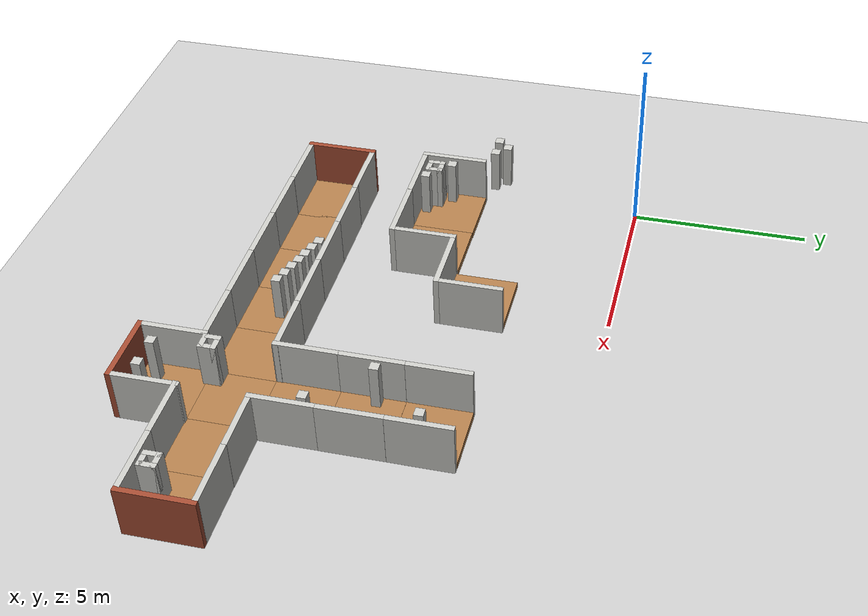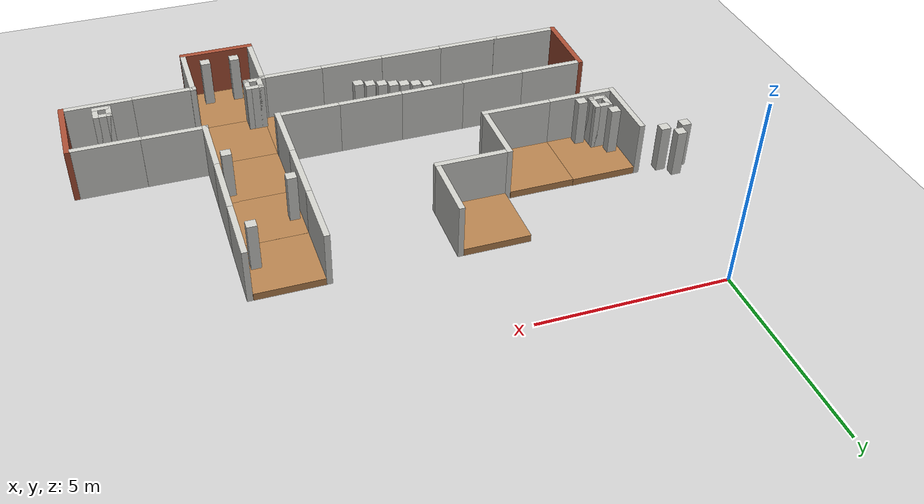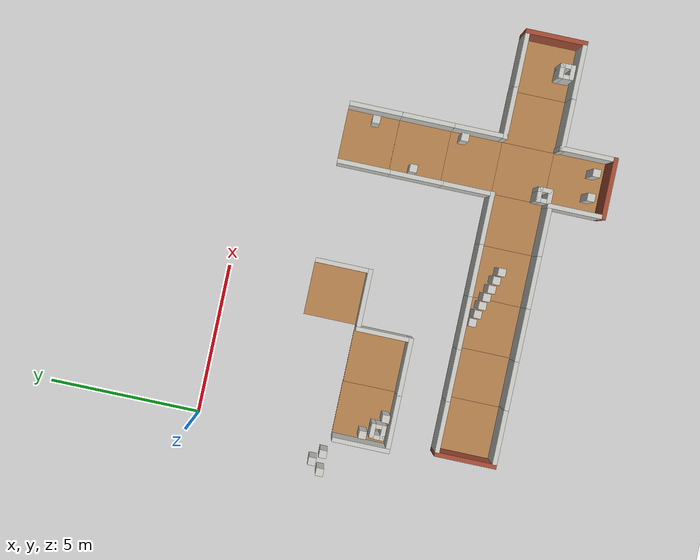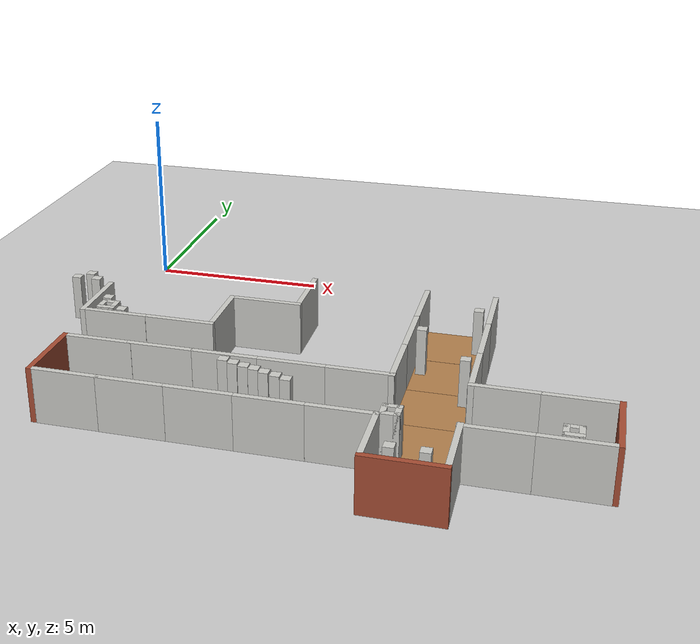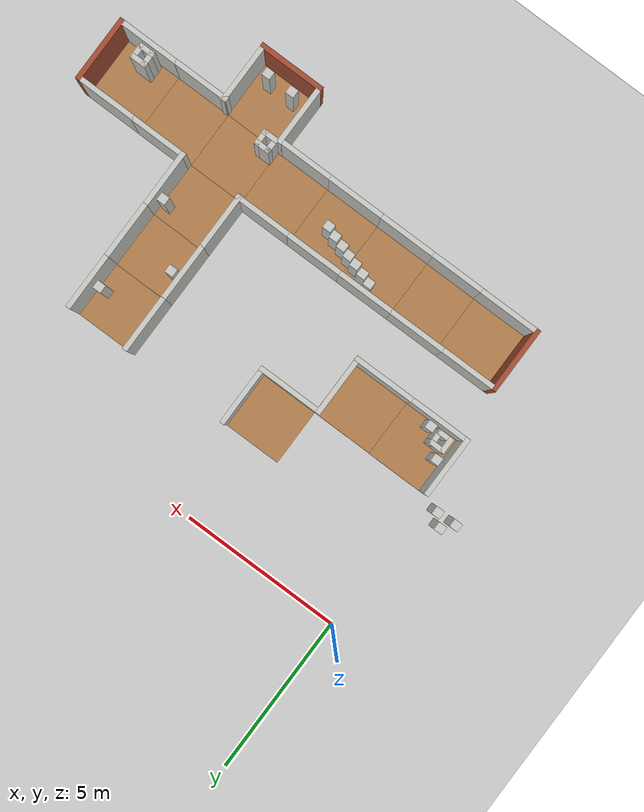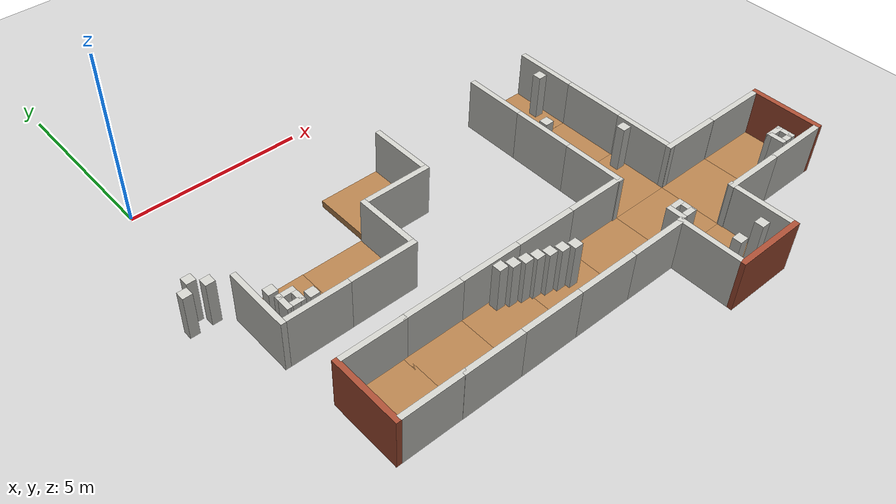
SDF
<sdf version="1.6">
 <world name="default">
  <model name="ground_plane">
   <static>1</static>
   <link name="link">
    <collision name="collision">
     <geometry><plane><normal>0 0 1</normal><size>100 100</size></plane></geometry>
     <surface><friction><ode><mu>100</mu><mu2>50</mu2></ode></friction></surface>
    </collision>
    <visual name="visual">
     <cast_shadows>0</cast_shadows>
     <geometry><plane><normal>0 0 1</normal><size>100 100</size></plane></geometry>
     <material>
      <script><uri>file://media/materials/scripts/gazebo.material</uri><name>Gazebo/Grey</name></script>
     </material>
    </visual>
   </link>
  </model>
  <model name="nerve_corner_6">
   <pose>1.09271 -5.44009 0 0 -0 1.57079</pose>
   <link name="Wall_0">
    <collision name="Wall_0_Collision">
     <geometry><box><size>1.76 1.75 0.2</size></box></geometry>
     <pose>0 0 0.1 0 -0 0</pose>
    </collision>
    <visual name="Wall_0_Visual">
     <pose>0 0 0.1 0 -0 0</pose>
     <geometry><box><size>1.76 1.75 0.2</size></box></geometry>
     <material>
      <script><uri>file://media/materials/scripts/gazebo.material</uri><name>Gazebo/Wood</name></script>
      <ambient>1 0.764706 0.305882 1</ambient>
     </material>
    </visual>
    <pose>0.077507 -0.077007 0 0 -0 3.14159</pose>
   </link>
   <link name="Wall_2">
    <collision name="Wall_2_Collision">
     <geometry><box><size>1.75 0.15 1.5</size></box></geometry>
     <pose>0 0 0.75 0 -0 0</pose>
    </collision>
    <visual name="Wall_2_Visual">
     <pose>0 0 0.75 0 -0 0</pose>
     <geometry><box><size>1.75 0.15 1.5</size></box></geometry>
     <material>
      <script><uri>file://media/materials/scripts/gazebo.material</uri><name>Gazebo/CeilingTiled</name></script>
      <ambient>1 0.764706 0.305882 1</ambient>
     </material>
    </visual>
    <pose>-0.882493 -0.073007 0 0 0 -1.5708</pose>
   </link>
   <link name="Wall_4">
    <collision name="Wall_4_Collision">
     <geometry><box><size>1.91042 0.15 1.5</size></box></geometry>
     <pose>0 0 0.75 0 -0 0</pose>
    </collision>
    <visual name="Wall_4_Visual">
     <pose>0 0 0.75 0 -0 0</pose>
     <geometry><box><size>1.91042 0.15 1.5</size></box></geometry>
     <material>
      <script><uri>file://media/materials/scripts/gazebo.material</uri><name>Gazebo/CeilingTiled</name></script>
      <ambient>1 0.764706 0.305882 1</ambient>
     </material>
    </visual>
    <pose>-0.002284 0.876825 0 0 -0 3.1414</pose>
   </link>
   <static>1</static>
  </model>
  <model name="nerve_corner_8">
   <pose>2.996 -5.44292 0 0 -0 3.14159</pose>
   <link name="Wall_0">
    <collision name="Wall_0_Collision">
     <geometry><box><size>1.76 1.75 0.2</size></box></geometry>
     <pose>0 0 0.1 0 -0 0</pose>
    </collision>
    <visual name="Wall_0_Visual">
     <pose>0 0 0.1 0 -0 0</pose>
     <geometry><box><size>1.76 1.75 0.2</size></box></geometry>
     <material>
      <script><uri>file://media/materials/scripts/gazebo.material</uri><name>Gazebo/Wood</name></script>
      <ambient>1 0.764706 0.305882 1</ambient>
     </material>
    </visual>
    <pose>0.077507 -0.077007 0 0 -0 3.14159</pose>
   </link>
   <link name="Wall_2">
    <collision name="Wall_2_Collision">
     <geometry><box><size>1.75 0.15 1.5</size></box></geometry>
     <pose>0 0 0.75 0 -0 0</pose>
    </collision>
    <visual name="Wall_2_Visual">
     <pose>0 0 0.75 0 -0 0</pose>
     <geometry><box><size>1.75 0.15 1.5</size></box></geometry>
     <material>
      <script><uri>file://media/materials/scripts/gazebo.material</uri><name>Gazebo/CeilingTiled</name></script>
      <ambient>1 0.764706 0.305882 1</ambient>
     </material>
    </visual>
    <pose>-0.882493 -0.073007 0 0 0 -1.5708</pose>
   </link>
   <link name="Wall_4">
    <collision name="Wall_4_Collision">
     <geometry><box><size>1.91042 0.15 1.5</size></box></geometry>
     <pose>0 0 0.75 0 -0 0</pose>
    </collision>
    <visual name="Wall_4_Visual">
     <pose>0 0 0.75 0 -0 0</pose>
     <geometry><box><size>1.91042 0.15 1.5</size></box></geometry>
     <material>
      <script><uri>file://media/materials/scripts/gazebo.material</uri><name>Gazebo/CeilingTiled</name></script>
      <ambient>1 0.764706 0.305882 1</ambient>
     </material>
    </visual>
    <pose>-0.002284 0.876825 0 0 -0 3.1414</pose>
   </link>
   <static>1</static>
  </model>
  <model name="nerve_corner_8_clone">
   <pose>4.90397 -3.68999 0 0 0 -3.14159</pose>
   <link name="Wall_0">
    <collision name="Wall_0_Collision">
     <geometry><box><size>1.76 1.75 0.2</size></box></geometry>
     <pose>0 0 0.1 0 -0 0</pose>
    </collision>
    <visual name="Wall_0_Visual">
     <pose>0 0 0.1 0 -0 0</pose>
     <geometry><box><size>1.76 1.75 0.2</size></box></geometry>
     <material>
      <script><uri>file://media/materials/scripts/gazebo.material</uri><name>Gazebo/Wood</name></script>
      <ambient>1 0.764706 0.305882 1</ambient>
     </material>
    </visual>
    <pose>0.077507 -0.077007 0 0 -0 3.14159</pose>
   </link>
   <link name="Wall_2">
    <collision name="Wall_2_Collision">
     <geometry><box><size>1.75 0.15 1.5</size></box></geometry>
     <pose>0 0 0.75 0 -0 0</pose>
    </collision>
    <visual name="Wall_2_Visual">
     <pose>0 0 0.75 0 -0 0</pose>
     <geometry><box><size>1.75 0.15 1.5</size></box></geometry>
     <material>
      <script><uri>file://media/materials/scripts/gazebo.material</uri><name>Gazebo/CeilingTiled</name></script>
      <ambient>1 0.764706 0.305882 1</ambient>
     </material>
    </visual>
    <pose>-0.882493 -0.073007 0 0 0 -1.5708</pose>
   </link>
   <link name="Wall_4">
    <collision name="Wall_4_Collision">
     <geometry><box><size>1.91042 0.15 1.5</size></box></geometry>
     <pose>0 0 0.75 0 -0 0</pose>
    </collision>
    <visual name="Wall_4_Visual">
     <pose>0 0 0.75 0 -0 0</pose>
     <geometry><box><size>1.91042 0.15 1.5</size></box></geometry>
     <material>
      <script><uri>file://media/materials/scripts/gazebo.material</uri><name>Gazebo/CeilingTiled</name></script>
      <ambient>1 0.764706 0.305882 1</ambient>
     </material>
    </visual>
    <pose>-0.002284 0.876825 0 0 -0 3.1414</pose>
   </link>
   <static>1</static>
  </model>
  <model name="nerve_end_2">
   <pose>1.33899 -8.851 0 0 -0 1.5708</pose>
   <link name="Wall_0">
    <collision name="Wall_0_Collision">
     <geometry><box><size>1.76 1.75 0.2</size></box></geometry>
     <pose>0 0 0.1 0 -0 0</pose>
    </collision>
    <visual name="Wall_0_Visual">
     <pose>0 0 0.1 0 -0 0</pose>
     <geometry><box><size>1.76 1.75 0.2</size></box></geometry>
     <material>
      <script><uri>file://media/materials/scripts/gazebo.material</uri><name>Gazebo/Wood</name></script>
      <ambient>1 0.764706 0.305882 1</ambient>
     </material>
    </visual>
    <pose>-0.009 -0.064 0 0 -0 0</pose>
   </link>
   <link name="Wall_2">
    <collision name="Wall_2_Collision">
     <geometry><box><size>1.8 0.15 1.5</size></box></geometry>
     <pose>0 0 0.75 0 -0 0</pose>
    </collision>
    <visual name="Wall_2_Visual">
     <pose>0 0 0.75 0 -0 0</pose>
     <geometry><box><size>1.8 0.15 1.5</size></box></geometry>
     <material>
      <script><uri>file://media/materials/scripts/gazebo.material</uri><name>Gazebo/CeilingTiled</name></script>
      <ambient>1 0.764706 0.305882 1</ambient>
     </material>
    </visual>
    <pose>-0.95 -0.065 0 0 0 -1.5708</pose>
   </link>
   <link name="Wall_4">
    <collision name="Wall_4_Collision">
     <geometry><box><size>1.8 0.15 1.5</size></box></geometry>
     <pose>0 0 0.75 0 -0 0</pose>
    </collision>
    <visual name="Wall_4_Visual">
     <pose>0 0 0.75 0 -0 0</pose>
     <geometry><box><size>1.8 0.15 1.5</size></box></geometry>
     <material>
      <script><uri>file://media/materials/scripts/gazebo.material</uri><name>Gazebo/CeilingTiled</name></script>
      <ambient>1 0.764706 0.305882 1</ambient>
     </material>
    </visual>
    <pose>0.95 -0.065 0 0 0 -1.5708</pose>
   </link>
   <link name="Wall_6">
    <collision name="Wall_6_Collision">
     <geometry><box><size>2.05 0.15 1.5</size></box></geometry>
     <pose>0 0 0.75 0 -0 0</pose>
    </collision>
    <visual name="Wall_6_Visual">
     <pose>0 0 0.75 0 -0 0</pose>
     <geometry><box><size>2.05 0.15 1.5</size></box></geometry>
     <material>
      <script><uri>file://media/materials/scripts/gazebo.material</uri><name>Gazebo/Bricks</name></script>
      <ambient>0.996078 0.47451 0.0196078 1</ambient>
     </material>
    </visual>
    <pose>0 0.89 0 0 -0 0</pose>
   </link>
   <static>1</static>
  </model>
  <model name="nerve_end_2_clone">
   <pose>13.571 -8.8694 0 0 0 -1.5708</pose>
   <link name="Wall_0">
    <collision name="Wall_0_Collision">
     <geometry><box><size>1.76 1.75 0.2</size></box></geometry>
     <pose>0 0 0.1 0 -0 0</pose>
    </collision>
    <visual name="Wall_0_Visual">
     <pose>0 0 0.1 0 -0 0</pose>
     <geometry><box><size>1.76 1.75 0.2</size></box></geometry>
     <material>
      <script><uri>file://media/materials/scripts/gazebo.material</uri><name>Gazebo/Wood</name></script>
      <ambient>1 0.764706 0.305882 1</ambient>
     </material>
    </visual>
    <pose>-0.009 -0.064 0 0 -0 0</pose>
   </link>
   <link name="Wall_2">
    <collision name="Wall_2_Collision">
     <geometry><box><size>1.8 0.15 1.5</size></box></geometry>
     <pose>0 0 0.75 0 -0 0</pose>
    </collision>
    <visual name="Wall_2_Visual">
     <pose>0 0 0.75 0 -0 0</pose>
     <geometry><box><size>1.8 0.15 1.5</size></box></geometry>
     <material>
      <script><uri>file://media/materials/scripts/gazebo.material</uri><name>Gazebo/CeilingTiled</name></script>
      <ambient>1 0.764706 0.305882 1</ambient>
     </material>
    </visual>
    <pose>-0.95 -0.065 0 0 0 -1.5708</pose>
   </link>
   <link name="Wall_4">
    <collision name="Wall_4_Collision">
     <geometry><box><size>1.8 0.15 1.5</size></box></geometry>
     <pose>0 0 0.75 0 -0 0</pose>
    </collision>
    <visual name="Wall_4_Visual">
     <pose>0 0 0.75 0 -0 0</pose>
     <geometry><box><size>1.8 0.15 1.5</size></box></geometry>
     <material>
      <script><uri>file://media/materials/scripts/gazebo.material</uri><name>Gazebo/CeilingTiled</name></script>
      <ambient>1 0.764706 0.305882 1</ambient>
     </material>
    </visual>
    <pose>0.95 -0.065 0 0 0 -1.5708</pose>
   </link>
   <link name="Wall_6">
    <collision name="Wall_6_Collision">
     <geometry><box><size>2.05 0.15 1.5</size></box></geometry>
     <pose>0 0 0.75 0 -0 0</pose>
    </collision>
    <visual name="Wall_6_Visual">
     <pose>0 0 0.75 0 -0 0</pose>
     <geometry><box><size>2.05 0.15 1.5</size></box></geometry>
     <material>
      <script><uri>file://media/materials/scripts/gazebo.material</uri><name>Gazebo/Bricks</name></script>
      <ambient>0.996078 0.47451 0.0196078 1</ambient>
     </material>
    </visual>
    <pose>0 0.89 0 0 -0 0</pose>
   </link>
   <static>1</static>
  </model>
  <model name="nerve_end_2_clone_0">
   <pose>10.0305 -10.6839 0 0 0 -3.14159</pose>
   <link name="Wall_0">
    <collision name="Wall_0_Collision">
     <geometry><box><size>1.76 1.75 0.2</size></box></geometry>
     <pose>0 0 0.1 0 -0 0</pose>
    </collision>
    <visual name="Wall_0_Visual">
     <pose>0 0 0.1 0 -0 0</pose>
     <geometry><box><size>1.76 1.75 0.2</size></box></geometry>
     <material>
      <script><uri>file://media/materials/scripts/gazebo.material</uri><name>Gazebo/Wood</name></script>
      <ambient>1 0.764706 0.305882 1</ambient>
     </material>
    </visual>
    <pose>-0.009 -0.064 0 0 -0 0</pose>
   </link>
   <link name="Wall_2">
    <collision name="Wall_2_Collision">
     <geometry><box><size>1.8 0.15 1.5</size></box></geometry>
     <pose>0 0 0.75 0 -0 0</pose>
    </collision>
    <visual name="Wall_2_Visual">
     <pose>0 0 0.75 0 -0 0</pose>
     <geometry><box><size>1.8 0.15 1.5</size></box></geometry>
     <material>
      <script><uri>file://media/materials/scripts/gazebo.material</uri><name>Gazebo/CeilingTiled</name></script>
      <ambient>1 0.764706 0.305882 1</ambient>
     </material>
    </visual>
    <pose>-0.95 -0.065 0 0 0 -1.5708</pose>
   </link>
   <link name="Wall_4">
    <collision name="Wall_4_Collision">
     <geometry><box><size>1.8 0.15 1.5</size></box></geometry>
     <pose>0 0 0.75 0 -0 0</pose>
    </collision>
    <visual name="Wall_4_Visual">
     <pose>0 0 0.75 0 -0 0</pose>
     <geometry><box><size>1.8 0.15 1.5</size></box></geometry>
     <material>
      <script><uri>file://media/materials/scripts/gazebo.material</uri><name>Gazebo/CeilingTiled</name></script>
      <ambient>1 0.764706 0.305882 1</ambient>
     </material>
    </visual>
    <pose>0.95 -0.065 0 0 0 -1.5708</pose>
   </link>
   <link name="Wall_6">
    <collision name="Wall_6_Collision">
     <geometry><box><size>2.05 0.15 1.5</size></box></geometry>
     <pose>0 0 0.75 0 -0 0</pose>
    </collision>
    <visual name="Wall_6_Visual">
     <pose>0 0 0.75 0 -0 0</pose>
     <geometry><box><size>2.05 0.15 1.5</size></box></geometry>
     <material>
      <script><uri>file://media/materials/scripts/gazebo.material</uri><name>Gazebo/Bricks</name></script>
      <ambient>0.996078 0.47451 0.0196078 1</ambient>
     </material>
    </visual>
    <pose>0 0.89 0 0 -0 0</pose>
   </link>
   <static>1</static>
  </model>
  <model name="nerve_straight_12_clone_1_clone_clone_1">
   <pose>10.0198 -3.63279 0 0 -0 3.14159</pose>
   <link name="Wall_0">
    <collision name="Wall_0_Collision">
     <geometry><box><size>1.76 1.75 0.2</size></box></geometry>
     <pose>0 0 0.1 0 -0 0</pose>
    </collision>
    <visual name="Wall_0_Visual">
     <pose>0 0 0.1 0 -0 0</pose>
     <geometry><box><size>1.76 1.75 0.2</size></box></geometry>
     <material>
      <script><uri>file://media/materials/scripts/gazebo.material</uri><name>Gazebo/Wood</name></script>
      <ambient>1 0.764706 0.305882 1</ambient>
     </material>
    </visual>
    <pose>0.005 -0.002 0 0 -0 3.14159</pose>
   </link>
   <link name="Wall_2">
    <collision name="Wall_2_Collision">
     <geometry><box><size>1.75 0.15 1.5</size></box></geometry>
     <pose>0 0 0.75 0 -0 0</pose>
    </collision>
    <visual name="Wall_2_Visual">
     <pose>0 0 0.75 0 -0 0</pose>
     <geometry><box><size>1.75 0.15 1.5</size></box></geometry>
     <material>
      <script><uri>file://media/materials/scripts/gazebo.material</uri><name>Gazebo/CeilingTiled</name></script>
      <ambient>1 0.764706 0.305882 1</ambient>
     </material>
    </visual>
    <pose>-0.955 0.002 0 0 0 -1.5708</pose>
   </link>
   <link name="Wall_4">
    <collision name="Wall_4_Collision">
     <geometry><box><size>1.75 0.15 1.5</size></box></geometry>
     <pose>0 0 0.75 0 -0 0</pose>
    </collision>
    <visual name="Wall_4_Visual">
     <pose>0 0 0.75 0 -0 0</pose>
     <geometry><box><size>1.75 0.15 1.5</size></box></geometry>
     <material>
      <script><uri>file://media/materials/scripts/gazebo.material</uri><name>Gazebo/CeilingTiled</name></script>
      <ambient>1 0.764706 0.305882 1</ambient>
     </material>
    </visual>
    <pose>0.955 0.002 0 0 0 -1.5708</pose>
   </link>
   <static>1</static>
  </model>
  <model name="nerve_straight_12_clone_1_clone_clone_2">
   <pose>10.0191 -5.38374 0 0 -0 3.14159</pose>
   <link name="Wall_0">
    <collision name="Wall_0_Collision">
     <geometry><box><size>1.76 1.75 0.2</size></box></geometry>
     <pose>0 0 0.1 0 -0 0</pose>
    </collision>
    <visual name="Wall_0_Visual">
     <pose>0 0 0.1 0 -0 0</pose>
     <geometry><box><size>1.76 1.75 0.2</size></box></geometry>
     <material>
      <script><uri>file://media/materials/scripts/gazebo.material</uri><name>Gazebo/Wood</name></script>
      <ambient>1 0.764706 0.305882 1</ambient>
     </material>
    </visual>
    <pose>0.005 -0.002 0 0 -0 3.14159</pose>
   </link>
   <link name="Wall_2">
    <collision name="Wall_2_Collision">
     <geometry><box><size>1.75 0.15 1.5</size></box></geometry>
     <pose>0 0 0.75 0 -0 0</pose>
    </collision>
    <visual name="Wall_2_Visual">
     <pose>0 0 0.75 0 -0 0</pose>
     <geometry><box><size>1.75 0.15 1.5</size></box></geometry>
     <material>
      <script><uri>file://media/materials/scripts/gazebo.material</uri><name>Gazebo/CeilingTiled</name></script>
      <ambient>1 0.764706 0.305882 1</ambient>
     </material>
    </visual>
    <pose>-0.955 0.002 0 0 0 -1.5708</pose>
   </link>
   <link name="Wall_4">
    <collision name="Wall_4_Collision">
     <geometry><box><size>1.75 0.15 1.5</size></box></geometry>
     <pose>0 0 0.75 0 -0 0</pose>
    </collision>
    <visual name="Wall_4_Visual">
     <pose>0 0 0.75 0 -0 0</pose>
     <geometry><box><size>1.75 0.15 1.5</size></box></geometry>
     <material>
      <script><uri>file://media/materials/scripts/gazebo.material</uri><name>Gazebo/CeilingTiled</name></script>
      <ambient>1 0.764706 0.305882 1</ambient>
     </material>
    </visual>
    <pose>0.955 0.002 0 0 0 -1.5708</pose>
   </link>
   <static>1</static>
  </model>
  <model name="nerve_straight_12_clone_1_clone_clone_3">
   <pose>8.27264 -8.85141 0 0 -0 1.57079</pose>
   <link name="Wall_0">
    <collision name="Wall_0_Collision">
     <geometry><box><size>1.76 1.75 0.2</size></box></geometry>
     <pose>0 0 0.1 0 -0 0</pose>
    </collision>
    <visual name="Wall_0_Visual">
     <pose>0 0 0.1 0 -0 0</pose>
     <geometry><box><size>1.76 1.75 0.2</size></box></geometry>
     <material>
      <script><uri>file://media/materials/scripts/gazebo.material</uri><name>Gazebo/Wood</name></script>
      <ambient>1 0.764706 0.305882 1</ambient>
     </material>
    </visual>
    <pose>0.005 -0.002 0 0 -0 3.14159</pose>
   </link>
   <link name="Wall_2">
    <collision name="Wall_2_Collision">
     <geometry><box><size>1.75 0.15 1.5</size></box></geometry>
     <pose>0 0 0.75 0 -0 0</pose>
    </collision>
    <visual name="Wall_2_Visual">
     <pose>0 0 0.75 0 -0 0</pose>
     <geometry><box><size>1.75 0.15 1.5</size></box></geometry>
     <material>
      <script><uri>file://media/materials/scripts/gazebo.material</uri><name>Gazebo/CeilingTiled</name></script>
      <ambient>1 0.764706 0.305882 1</ambient>
     </material>
    </visual>
    <pose>-0.955 0.002 0 0 0 -1.5708</pose>
   </link>
   <link name="Wall_4">
    <collision name="Wall_4_Collision">
     <geometry><box><size>1.75 0.15 1.5</size></box></geometry>
     <pose>0 0 0.75 0 -0 0</pose>
    </collision>
    <visual name="Wall_4_Visual">
     <pose>0 0 0.75 0 -0 0</pose>
     <geometry><box><size>1.75 0.15 1.5</size></box></geometry>
     <material>
      <script><uri>file://media/materials/scripts/gazebo.material</uri><name>Gazebo/CeilingTiled</name></script>
      <ambient>1 0.764706 0.305882 1</ambient>
     </material>
    </visual>
    <pose>0.955 0.002 0 0 0 -1.5708</pose>
   </link>
   <static>1</static>
  </model>
  <model name="nerve_platform_1">
   <pose>10.0224 -8.86715 0 0 -0 0</pose>
   <link name="Wall_6">
    <collision name="Wall_6_Collision">
     <geometry><box><size>1.76 1.75 0.2</size></box></geometry>
     <pose>0 0 0.1 0 -0 0</pose>
    </collision>
    <visual name="Wall_6_Visual">
     <pose>0 0 0.1 0 -0 0</pose>
     <geometry><box><size>1.76 1.75 0.2</size></box></geometry>
     <material>
      <script><uri>file://media/materials/scripts/gazebo.material</uri><name>Gazebo/Wood</name></script>
      <ambient>1 0.764706 0.305882 1</ambient>
     </material>
    </visual>
    <pose>0 0 0 0 -0 1.5708</pose>
   </link>
   <static>1</static>
  </model>
  <model name="nerve_straight_12_clone_1_clone_clone_3_clone">
   <pose>11.7655 -8.86888 0 0 -0 1.57079</pose>
   <link name="Wall_0">
    <collision name="Wall_0_Collision">
     <geometry><box><size>1.76 1.75 0.2</size></box></geometry>
     <pose>0 0 0.1 0 -0 0</pose>
    </collision>
    <visual name="Wall_0_Visual">
     <pose>0 0 0.1 0 -0 0</pose>
     <geometry><box><size>1.76 1.75 0.2</size></box></geometry>
     <material>
      <script><uri>file://media/materials/scripts/gazebo.material</uri><name>Gazebo/Wood</name></script>
      <ambient>1 0.764706 0.305882 1</ambient>
     </material>
    </visual>
    <pose>0.005 -0.002 0 0 -0 3.14159</pose>
   </link>
   <link name="Wall_2">
    <collision name="Wall_2_Collision">
     <geometry><box><size>1.75 0.15 1.5</size></box></geometry>
     <pose>0 0 0.75 0 -0 0</pose>
    </collision>
    <visual name="Wall_2_Visual">
     <pose>0 0 0.75 0 -0 0</pose>
     <geometry><box><size>1.75 0.15 1.5</size></box></geometry>
     <material>
      <script><uri>file://media/materials/scripts/gazebo.material</uri><name>Gazebo/CeilingTiled</name></script>
      <ambient>1 0.764706 0.305882 1</ambient>
     </material>
    </visual>
    <pose>-0.955 0.002 0 0 0 -1.5708</pose>
   </link>
   <link name="Wall_4">
    <collision name="Wall_4_Collision">
     <geometry><box><size>1.75 0.15 1.5</size></box></geometry>
     <pose>0 0 0.75 0 -0 0</pose>
    </collision>
    <visual name="Wall_4_Visual">
     <pose>0 0 0.75 0 -0 0</pose>
     <geometry><box><size>1.75 0.15 1.5</size></box></geometry>
     <material>
      <script><uri>file://media/materials/scripts/gazebo.material</uri><name>Gazebo/CeilingTiled</name></script>
      <ambient>1 0.764706 0.305882 1</ambient>
     </material>
    </visual>
    <pose>0.955 0.002 0 0 0 -1.5708</pose>
   </link>
   <static>1</static>
  </model>
  <model name="nerve_straight_12_clone_1_clone_clone_3_clone_0">
   <pose>10.0172 -7.11671 0 0 -0 3.14159</pose>
   <link name="Wall_0">
    <collision name="Wall_0_Collision">
     <geometry><box><size>1.76 1.75 0.2</size></box></geometry>
     <pose>0 0 0.1 0 -0 0</pose>
    </collision>
    <visual name="Wall_0_Visual">
     <pose>0 0 0.1 0 -0 0</pose>
     <geometry><box><size>1.76 1.75 0.2</size></box></geometry>
     <material>
      <script><uri>file://media/materials/scripts/gazebo.material</uri><name>Gazebo/Wood</name></script>
      <ambient>1 0.764706 0.305882 1</ambient>
     </material>
    </visual>
    <pose>0.005 -0.002 0 0 -0 3.14159</pose>
   </link>
   <link name="Wall_2">
    <collision name="Wall_2_Collision">
     <geometry><box><size>1.75 0.15 1.5</size></box></geometry>
     <pose>0 0 0.75 0 -0 0</pose>
    </collision>
    <visual name="Wall_2_Visual">
     <pose>0 0 0.75 0 -0 0</pose>
     <geometry><box><size>1.75 0.15 1.5</size></box></geometry>
     <material>
      <script><uri>file://media/materials/scripts/gazebo.material</uri><name>Gazebo/CeilingTiled</name></script>
      <ambient>1 0.764706 0.305882 1</ambient>
     </material>
    </visual>
    <pose>-0.955 0.002 0 0 0 -1.5708</pose>
   </link>
   <link name="Wall_4">
    <collision name="Wall_4_Collision">
     <geometry><box><size>1.75 0.15 1.5</size></box></geometry>
     <pose>0 0 0.75 0 -0 0</pose>
    </collision>
    <visual name="Wall_4_Visual">
     <pose>0 0 0.75 0 -0 0</pose>
     <geometry><box><size>1.75 0.15 1.5</size></box></geometry>
     <material>
      <script><uri>file://media/materials/scripts/gazebo.material</uri><name>Gazebo/CeilingTiled</name></script>
      <ambient>1 0.764706 0.305882 1</ambient>
     </material>
    </visual>
    <pose>0.955 0.002 0 0 0 -1.5708</pose>
   </link>
   <static>1</static>
  </model>
  <model name="nerve_straight_12_clone_1_clone_clone_3_clone_1">
   <pose>6.53662 -8.85185 0 0 -0 1.57079</pose>
   <link name="Wall_0">
    <collision name="Wall_0_Collision">
     <geometry><box><size>1.76 1.75 0.2</size></box></geometry>
     <pose>0 0 0.1 0 -0 0</pose>
    </collision>
    <visual name="Wall_0_Visual">
     <pose>0 0 0.1 0 -0 0</pose>
     <geometry><box><size>1.76 1.75 0.2</size></box></geometry>
     <material>
      <script><uri>file://media/materials/scripts/gazebo.material</uri><name>Gazebo/Wood</name></script>
      <ambient>1 0.764706 0.305882 1</ambient>
     </material>
    </visual>
    <pose>0.005 -0.002 0 0 -0 3.14159</pose>
   </link>
   <link name="Wall_2">
    <collision name="Wall_2_Collision">
     <geometry><box><size>1.75 0.15 1.5</size></box></geometry>
     <pose>0 0 0.75 0 -0 0</pose>
    </collision>
    <visual name="Wall_2_Visual">
     <pose>0 0 0.75 0 -0 0</pose>
     <geometry><box><size>1.75 0.15 1.5</size></box></geometry>
     <material>
      <script><uri>file://media/materials/scripts/gazebo.material</uri><name>Gazebo/CeilingTiled</name></script>
      <ambient>1 0.764706 0.305882 1</ambient>
     </material>
    </visual>
    <pose>-0.955 0.002 0 0 0 -1.5708</pose>
   </link>
   <link name="Wall_4">
    <collision name="Wall_4_Collision">
     <geometry><box><size>1.75 0.15 1.5</size></box></geometry>
     <pose>0 0 0.75 0 -0 0</pose>
    </collision>
    <visual name="Wall_4_Visual">
     <pose>0 0 0.75 0 -0 0</pose>
     <geometry><box><size>1.75 0.15 1.5</size></box></geometry>
     <material>
      <script><uri>file://media/materials/scripts/gazebo.material</uri><name>Gazebo/CeilingTiled</name></script>
      <ambient>1 0.764706 0.305882 1</ambient>
     </material>
    </visual>
    <pose>0.955 0.002 0 0 0 -1.5708</pose>
   </link>
   <static>1</static>
  </model>
  <model name="nerve_straight_12_clone_1_clone_clone_3_clone_2">
   <pose>4.79429 -8.8502 0 0 -0 1.57079</pose>
   <link name="Wall_0">
    <collision name="Wall_0_Collision">
     <geometry><box><size>1.76 1.75 0.2</size></box></geometry>
     <pose>0 0 0.1 0 -0 0</pose>
    </collision>
    <visual name="Wall_0_Visual">
     <pose>0 0 0.1 0 -0 0</pose>
     <geometry><box><size>1.76 1.75 0.2</size></box></geometry>
     <material>
      <script><uri>file://media/materials/scripts/gazebo.material</uri><name>Gazebo/Wood</name></script>
      <ambient>1 0.764706 0.305882 1</ambient>
     </material>
    </visual>
    <pose>0.005 -0.002 0 0 -0 3.14159</pose>
   </link>
   <link name="Wall_2">
    <collision name="Wall_2_Collision">
     <geometry><box><size>1.75 0.15 1.5</size></box></geometry>
     <pose>0 0 0.75 0 -0 0</pose>
    </collision>
    <visual name="Wall_2_Visual">
     <pose>0 0 0.75 0 -0 0</pose>
     <geometry><box><size>1.75 0.15 1.5</size></box></geometry>
     <material>
      <script><uri>file://media/materials/scripts/gazebo.material</uri><name>Gazebo/CeilingTiled</name></script>
      <ambient>1 0.764706 0.305882 1</ambient>
     </material>
    </visual>
    <pose>-0.955 0.002 0 0 0 -1.5708</pose>
   </link>
   <link name="Wall_4">
    <collision name="Wall_4_Collision">
     <geometry><box><size>1.75 0.15 1.5</size></box></geometry>
     <pose>0 0 0.75 0 -0 0</pose>
    </collision>
    <visual name="Wall_4_Visual">
     <pose>0 0 0.75 0 -0 0</pose>
     <geometry><box><size>1.75 0.15 1.5</size></box></geometry>
     <material>
      <script><uri>file://media/materials/scripts/gazebo.material</uri><name>Gazebo/CeilingTiled</name></script>
      <ambient>1 0.764706 0.305882 1</ambient>
     </material>
    </visual>
    <pose>0.955 0.002 0 0 0 -1.5708</pose>
   </link>
   <static>1</static>
  </model>
  <model name="nerve_straight_12_clone_1_clone_clone_3_clone_2_clone">
   <pose>3.06851 -8.85063 0 0 -0 1.57079</pose>
   <link name="Wall_0">
    <collision name="Wall_0_Collision">
     <geometry><box><size>1.76 1.75 0.2</size></box></geometry>
     <pose>0 0 0.1 0 -0 0</pose>
    </collision>
    <visual name="Wall_0_Visual">
     <pose>0 0 0.1 0 -0 0</pose>
     <geometry><box><size>1.76 1.75 0.2</size></box></geometry>
     <material>
      <script><uri>file://media/materials/scripts/gazebo.material</uri><name>Gazebo/Wood</name></script>
      <ambient>1 0.764706 0.305882 1</ambient>
     </material>
    </visual>
    <pose>0.005 -0.002 0 0 -0 3.14159</pose>
   </link>
   <link name="Wall_2">
    <collision name="Wall_2_Collision">
     <geometry><box><size>1.75 0.15 1.5</size></box></geometry>
     <pose>0 0 0.75 0 -0 0</pose>
    </collision>
    <visual name="Wall_2_Visual">
     <pose>0 0 0.75 0 -0 0</pose>
     <geometry><box><size>1.75 0.15 1.5</size></box></geometry>
     <material>
      <script><uri>file://media/materials/scripts/gazebo.material</uri><name>Gazebo/CeilingTiled</name></script>
      <ambient>1 0.764706 0.305882 1</ambient>
     </material>
    </visual>
    <pose>-0.955 0.002 0 0 0 -1.5708</pose>
   </link>
   <link name="Wall_4">
    <collision name="Wall_4_Collision">
     <geometry><box><size>1.75 0.15 1.5</size></box></geometry>
     <pose>0 0 0.75 0 -0 0</pose>
    </collision>
    <visual name="Wall_4_Visual">
     <pose>0 0 0.75 0 -0 0</pose>
     <geometry><box><size>1.75 0.15 1.5</size></box></geometry>
     <material>
      <script><uri>file://media/materials/scripts/gazebo.material</uri><name>Gazebo/CeilingTiled</name></script>
      <ambient>1 0.764706 0.305882 1</ambient>
     </material>
    </visual>
    <pose>0.955 0.002 0 0 0 -1.5708</pose>
   </link>
   <static>1</static>
  </model>
  <model name="nerve_obs_squarepillar_large">
   <pose>0.753807 -5.89038 0.2 0 -0 0</pose>
   <link name="Wall_31">
    <collision name="Wall_31_Collision">
     <geometry><box><size>0.5 0.15 1.3</size></box></geometry>
     <pose>0 0 0.65 0 -0 0</pose>
    </collision>
    <visual name="Wall_31_Visual">
     <pose>0 0 0.65 0 -0 0</pose>
     <geometry><box><size>0.5 0.15 1.3</size></box></geometry>
     <material>
      <script><uri>file://media/materials/scripts/gazebo.material</uri><name>Gazebo/CeilingTiled</name></script>
      <ambient>1 0.764706 0.305882 1</ambient>
     </material>
    </visual>
    <pose>-0.175 0 0 0 0 -1.5708</pose>
   </link>
   <link name="Wall_32">
    <collision name="Wall_32_Collision">
     <geometry><box><size>0.5 0.15 1.3</size></box></geometry>
     <pose>0 0 0.65 0 -0 0</pose>
    </collision>
    <visual name="Wall_32_Visual">
     <pose>0 0 0.65 0 -0 0</pose>
     <geometry><box><size>0.5 0.15 1.3</size></box></geometry>
     <material>
      <script><uri>file://media/materials/scripts/gazebo.material</uri><name>Gazebo/CeilingTiled</name></script>
      <ambient>1 0.764706 0.305882 1</ambient>
     </material>
    </visual>
    <pose>0 -0.175 0 0 -0 0</pose>
   </link>
   <link name="Wall_33">
    <collision name="Wall_33_Collision">
     <geometry><box><size>0.5 0.15 1.3</size></box></geometry>
     <pose>0 0 0.65 0 -0 0</pose>
    </collision>
    <visual name="Wall_33_Visual">
     <pose>0 0 0.65 0 -0 0</pose>
     <geometry><box><size>0.5 0.15 1.3</size></box></geometry>
     <material>
      <script><uri>file://media/materials/scripts/gazebo.material</uri><name>Gazebo/CeilingTiled</name></script>
      <ambient>1 0.764706 0.305882 1</ambient>
     </material>
    </visual>
    <pose>0.175 0 0 0 -0 1.5708</pose>
   </link>
   <link name="Wall_34">
    <collision name="Wall_34_Collision">
     <geometry><box><size>0.5 0.15 1.3</size></box></geometry>
     <pose>0 0 0.65 0 -0 0</pose>
    </collision>
    <visual name="Wall_34_Visual">
     <pose>0 0 0.65 0 -0 0</pose>
     <geometry><box><size>0.5 0.15 1.3</size></box></geometry>
     <material>
      <script><uri>file://media/materials/scripts/gazebo.material</uri><name>Gazebo/CeilingTiled</name></script>
      <ambient>1 0.764706 0.305882 1</ambient>
     </material>
    </visual>
    <pose>0 0.175 0 0 -0 3.14159</pose>
   </link>
   <static>1</static>
  </model>
  <model name="nerve_obs_squarepillar_small">
   <pose>0.559433 -5.42662 0.2 0 -0 0</pose>
   <link name="Wall_40">
    <collision name="Wall_40_Collision">
     <geometry><box><size>0.26 0.25 1.3</size></box></geometry>
     <pose>0 0 0.65 0 -0 0</pose>
    </collision>
    <visual name="Wall_40_Visual">
     <pose>0 0 0.65 0 -0 0</pose>
     <geometry><box><size>0.26 0.25 1.3</size></box></geometry>
     <material>
      <script><uri>file://media/materials/scripts/gazebo.material</uri><name>Gazebo/CeilingTiled</name></script>
      <ambient>1 0.764706 0.305882 1</ambient>
     </material>
    </visual>
   </link>
   <static>1</static>
  </model>
  <model name="nerve_obs_squarepillar_small_clone">
   <pose>1.21933 -6.05721 0.2 0 -0 0</pose>
   <link name="Wall_40">
    <collision name="Wall_40_Collision">
     <geometry><box><size>0.26 0.25 1.3</size></box></geometry>
     <pose>0 0 0.65 0 -0 0</pose>
    </collision>
    <visual name="Wall_40_Visual">
     <pose>0 0 0.65 0 -0 0</pose>
     <geometry><box><size>0.26 0.25 1.3</size></box></geometry>
     <material>
      <script><uri>file://media/materials/scripts/gazebo.material</uri><name>Gazebo/CeilingTiled</name></script>
      <ambient>1 0.764706 0.305882 1</ambient>
     </material>
    </visual>
   </link>
   <static>1</static>
  </model>
  <model name="nerve_obs_squarepillar_large_clone_5_clone_1">
   <pose>9.36991 -9.55873 0.2 0 -0 0</pose>
   <link name="Wall_31">
    <collision name="Wall_31_Collision">
     <geometry><box><size>0.5 0.15 1.3</size></box></geometry>
     <pose>0 0 0.65 0 -0 0</pose>
    </collision>
    <visual name="Wall_31_Visual">
     <pose>0 0 0.65 0 -0 0</pose>
     <geometry><box><size>0.5 0.15 1.3</size></box></geometry>
     <material>
      <script><uri>file://media/materials/scripts/gazebo.material</uri><name>Gazebo/CeilingTiled</name></script>
      <ambient>1 0.764706 0.305882 1</ambient>
     </material>
    </visual>
    <pose>-0.175 0 0 0 0 -1.5708</pose>
   </link>
   <link name="Wall_32">
    <collision name="Wall_32_Collision">
     <geometry><box><size>0.5 0.15 1.3</size></box></geometry>
     <pose>0 0 0.65 0 -0 0</pose>
    </collision>
    <visual name="Wall_32_Visual">
     <pose>0 0 0.65 0 -0 0</pose>
     <geometry><box><size>0.5 0.15 1.3</size></box></geometry>
     <material>
      <script><uri>file://media/materials/scripts/gazebo.material</uri><name>Gazebo/CeilingTiled</name></script>
      <ambient>1 0.764706 0.305882 1</ambient>
     </material>
    </visual>
    <pose>0 -0.175 0 0 -0 0</pose>
   </link>
   <link name="Wall_33">
    <collision name="Wall_33_Collision">
     <geometry><box><size>0.5 0.15 1.3</size></box></geometry>
     <pose>0 0 0.65 0 -0 0</pose>
    </collision>
    <visual name="Wall_33_Visual">
     <pose>0 0 0.65 0 -0 0</pose>
     <geometry><box><size>0.5 0.15 1.3</size></box></geometry>
     <material>
      <script><uri>file://media/materials/scripts/gazebo.material</uri><name>Gazebo/CeilingTiled</name></script>
      <ambient>1 0.764706 0.305882 1</ambient>
     </material>
    </visual>
    <pose>0.175 0 0 0 -0 1.5708</pose>
   </link>
   <link name="Wall_34">
    <collision name="Wall_34_Collision">
     <geometry><box><size>0.5 0.15 1.3</size></box></geometry>
     <pose>0 0 0.65 0 -0 0</pose>
    </collision>
    <visual name="Wall_34_Visual">
     <pose>0 0 0.65 0 -0 0</pose>
     <geometry><box><size>0.5 0.15 1.3</size></box></geometry>
     <material>
      <script><uri>file://media/materials/scripts/gazebo.material</uri><name>Gazebo/CeilingTiled</name></script>
      <ambient>1 0.764706 0.305882 1</ambient>
     </material>
    </visual>
    <pose>0 0.175 0 0 -0 3.14159</pose>
   </link>
   <static>1</static>
  </model>
  <model name="nerve_obs_squarepillar_large_clone_5_clone_2">
   <pose>13.4408 -9.42887 0.2 0 -0 0</pose>
   <link name="Wall_31">
    <collision name="Wall_31_Collision">
     <geometry><box><size>0.5 0.15 1.3</size></box></geometry>
     <pose>0 0 0.65 0 -0 0</pose>
    </collision>
    <visual name="Wall_31_Visual">
     <pose>0 0 0.65 0 -0 0</pose>
     <geometry><box><size>0.5 0.15 1.3</size></box></geometry>
     <material>
      <script><uri>file://media/materials/scripts/gazebo.material</uri><name>Gazebo/CeilingTiled</name></script>
      <ambient>1 0.764706 0.305882 1</ambient>
     </material>
    </visual>
    <pose>-0.175 0 0 0 0 -1.5708</pose>
   </link>
   <link name="Wall_32">
    <collision name="Wall_32_Collision">
     <geometry><box><size>0.5 0.15 1.3</size></box></geometry>
     <pose>0 0 0.65 0 -0 0</pose>
    </collision>
    <visual name="Wall_32_Visual">
     <pose>0 0 0.65 0 -0 0</pose>
     <geometry><box><size>0.5 0.15 1.3</size></box></geometry>
     <material>
      <script><uri>file://media/materials/scripts/gazebo.material</uri><name>Gazebo/CeilingTiled</name></script>
      <ambient>1 0.764706 0.305882 1</ambient>
     </material>
    </visual>
    <pose>0 -0.175 0 0 -0 0</pose>
   </link>
   <link name="Wall_33">
    <collision name="Wall_33_Collision">
     <geometry><box><size>0.5 0.15 1.3</size></box></geometry>
     <pose>0 0 0.65 0 -0 0</pose>
    </collision>
    <visual name="Wall_33_Visual">
     <pose>0 0 0.65 0 -0 0</pose>
     <geometry><box><size>0.5 0.15 1.3</size></box></geometry>
     <material>
      <script><uri>file://media/materials/scripts/gazebo.material</uri><name>Gazebo/CeilingTiled</name></script>
      <ambient>1 0.764706 0.305882 1</ambient>
     </material>
    </visual>
    <pose>0.175 0 0 0 -0 1.5708</pose>
   </link>
   <link name="Wall_34">
    <collision name="Wall_34_Collision">
     <geometry><box><size>0.5 0.15 1.3</size></box></geometry>
     <pose>0 0 0.65 0 -0 0</pose>
    </collision>
    <visual name="Wall_34_Visual">
     <pose>0 0 0.65 0 -0 0</pose>
     <geometry><box><size>0.5 0.15 1.3</size></box></geometry>
     <material>
      <script><uri>file://media/materials/scripts/gazebo.material</uri><name>Gazebo/CeilingTiled</name></script>
      <ambient>1 0.764706 0.305882 1</ambient>
     </material>
    </visual>
    <pose>0 0.175 0 0 -0 3.14159</pose>
   </link>
   <static>1</static>
  </model>
  <model name="nerve_obs_squarepillar_small_clone_0_clone_5_clone_1">
   <pose>10.6321 -3.72188 0.2 0 -0 0</pose>
   <link name="Wall_40">
    <collision name="Wall_40_Collision">
     <geometry><box><size>0.26 0.25 1.3</size></box></geometry>
     <pose>0 0 0.65 0 -0 0</pose>
    </collision>
    <visual name="Wall_40_Visual">
     <pose>0 0 0.65 0 -0 0</pose>
     <geometry><box><size>0.26 0.25 1.3</size></box></geometry>
     <material>
      <script><uri>file://media/materials/scripts/gazebo.material</uri><name>Gazebo/CeilingTiled</name></script>
      <ambient>1 0.764706 0.305882 1</ambient>
     </material>
    </visual>
   </link>
   <static>1</static>
  </model>
  <model name="nerve_obs_squarepillar_small_clone_0_clone_5_clone_2">
   <pose>9.3368 -5.22509 0.2 0 -0 0</pose>
   <link name="Wall_40">
    <collision name="Wall_40_Collision">
     <geometry><box><size>0.26 0.25 1.3</size></box></geometry>
     <pose>0 0 0.65 0 -0 0</pose>
    </collision>
    <visual name="Wall_40_Visual">
     <pose>0 0 0.65 0 -0 0</pose>
     <geometry><box><size>0.26 0.25 1.3</size></box></geometry>
     <material>
      <script><uri>file://media/materials/scripts/gazebo.material</uri><name>Gazebo/CeilingTiled</name></script>
      <ambient>1 0.764706 0.305882 1</ambient>
     </material>
    </visual>
   </link>
   <static>1</static>
  </model>
  <model name="nerve_obs_squarepillar_small_clone_0_clone_5_clone_3">
   <pose>10.6724 -6.65 0.2 0 -0 0</pose>
   <link name="Wall_40">
    <collision name="Wall_40_Collision">
     <geometry><box><size>0.26 0.25 1.3</size></box></geometry>
     <pose>0 0 0.65 0 -0 0</pose>
    </collision>
    <visual name="Wall_40_Visual">
     <pose>0 0 0.65 0 -0 0</pose>
     <geometry><box><size>0.26 0.25 1.3</size></box></geometry>
     <material>
      <script><uri>file://media/materials/scripts/gazebo.material</uri><name>Gazebo/CeilingTiled</name></script>
      <ambient>1 0.764706 0.305882 1</ambient>
     </material>
    </visual>
   </link>
   <static>1</static>
  </model>
  <model name="nerve_obs_squarepillar_small_clone_0_clone_5_clone_4">
   <pose>4.85945 -8.14355 0.2 0 -0 0</pose>
   <link name="Wall_40">
    <collision name="Wall_40_Collision">
     <geometry><box><size>0.26 0.25 1.3</size></box></geometry>
     <pose>0 0 0.65 0 -0 0</pose>
    </collision>
    <visual name="Wall_40_Visual">
     <pose>0 0 0.65 0 -0 0</pose>
     <geometry><box><size>0.26 0.25 1.3</size></box></geometry>
     <material>
      <script><uri>file://media/materials/scripts/gazebo.material</uri><name>Gazebo/CeilingTiled</name></script>
      <ambient>1 0.764706 0.305882 1</ambient>
     </material>
    </visual>
   </link>
   <static>1</static>
  </model>
  <model name="nerve_obs_squarepillar_small_clone_0_clone_5_clone_5">
   <pose>5.15318 -8.24898 0.2 0 -0 0</pose>
   <link name="Wall_40">
    <collision name="Wall_40_Collision">
     <geometry><box><size>0.26 0.25 1.3</size></box></geometry>
     <pose>0 0 0.65 0 -0 0</pose>
    </collision>
    <visual name="Wall_40_Visual">
     <pose>0 0 0.65 0 -0 0</pose>
     <geometry><box><size>0.26 0.25 1.3</size></box></geometry>
     <material>
      <script><uri>file://media/materials/scripts/gazebo.material</uri><name>Gazebo/CeilingTiled</name></script>
      <ambient>1 0.764706 0.305882 1</ambient>
     </material>
    </visual>
   </link>
   <static>1</static>
  </model>
  <model name="nerve_obs_squarepillar_small_clone_0_clone_5_clone_6">
   <pose>5.45632 -8.34076 0.2 0 -0 0</pose>
   <link name="Wall_40">
    <collision name="Wall_40_Collision">
     <geometry><box><size>0.26 0.25 1.3</size></box></geometry>
     <pose>0 0 0.65 0 -0 0</pose>
    </collision>
    <visual name="Wall_40_Visual">
     <pose>0 0 0.65 0 -0 0</pose>
     <geometry><box><size>0.26 0.25 1.3</size></box></geometry>
     <material>
      <script><uri>file://media/materials/scripts/gazebo.material</uri><name>Gazebo/CeilingTiled</name></script>
      <ambient>1 0.764706 0.305882 1</ambient>
     </material>
    </visual>
   </link>
   <static>1</static>
  </model>
  <model name="nerve_obs_squarepillar_small_clone_0_clone_5_clone_7">
   <pose>5.74542 -8.42159 0.2 0 -0 0</pose>
   <link name="Wall_40">
    <collision name="Wall_40_Collision">
     <geometry><box><size>0.26 0.25 1.3</size></box></geometry>
     <pose>0 0 0.65 0 -0 0</pose>
    </collision>
    <visual name="Wall_40_Visual">
     <pose>0 0 0.65 0 -0 0</pose>
     <geometry><box><size>0.26 0.25 1.3</size></box></geometry>
     <material>
      <script><uri>file://media/materials/scripts/gazebo.material</uri><name>Gazebo/CeilingTiled</name></script>
      <ambient>1 0.764706 0.305882 1</ambient>
     </material>
    </visual>
   </link>
   <static>1</static>
  </model>
  <model name="nerve_obs_squarepillar_small_clone_0_clone_5_clone_8">
   <pose>6.0353 -8.5257 0.2 0 -0 0</pose>
   <link name="Wall_40">
    <collision name="Wall_40_Collision">
     <geometry><box><size>0.26 0.25 1.3</size></box></geometry>
     <pose>0 0 0.65 0 -0 0</pose>
    </collision>
    <visual name="Wall_40_Visual">
     <pose>0 0 0.65 0 -0 0</pose>
     <geometry><box><size>0.26 0.25 1.3</size></box></geometry>
     <material>
      <script><uri>file://media/materials/scripts/gazebo.material</uri><name>Gazebo/CeilingTiled</name></script>
      <ambient>1 0.764706 0.305882 1</ambient>
     </material>
    </visual>
   </link>
   <static>1</static>
  </model>
  <model name="nerve_obs_squarepillar_small_clone_0_clone_5_clone_9">
   <pose>6.3462 -8.61554 0.2 0 -0 0</pose>
   <link name="Wall_40">
    <collision name="Wall_40_Collision">
     <geometry><box><size>0.26 0.25 1.3</size></box></geometry>
     <pose>0 0 0.65 0 -0 0</pose>
    </collision>
    <visual name="Wall_40_Visual">
     <pose>0 0 0.65 0 -0 0</pose>
     <geometry><box><size>0.26 0.25 1.3</size></box></geometry>
     <material>
      <script><uri>file://media/materials/scripts/gazebo.material</uri><name>Gazebo/CeilingTiled</name></script>
      <ambient>1 0.764706 0.305882 1</ambient>
     </material>
    </visual>
   </link>
   <static>1</static>
  </model>
  <model name="nerve_obs_squarepillar_small_clone_0_clone_5_clone_10">
   <pose>6.6458 -8.72928 0.2 0 -0 0</pose>
   <link name="Wall_40">
    <collision name="Wall_40_Collision">
     <geometry><box><size>0.26 0.25 1.3</size></box></geometry>
     <pose>0 0 0.65 0 -0 0</pose>
    </collision>
    <visual name="Wall_40_Visual">
     <pose>0 0 0.65 0 -0 0</pose>
     <geometry><box><size>0.26 0.25 1.3</size></box></geometry>
     <material>
      <script><uri>file://media/materials/scripts/gazebo.material</uri><name>Gazebo/CeilingTiled</name></script>
      <ambient>1 0.764706 0.305882 1</ambient>
     </material>
    </visual>
   </link>
   <static>1</static>
  </model>
  <model name="nerve_obs_squarepillar_small_clone_0_clone_3_clone_0">
   <pose>10.4324 -11.0554 0.2 0 -0 0</pose>
   <link name="Wall_40">
    <collision name="Wall_40_Collision">
     <geometry><box><size>0.26 0.25 1.3</size></box></geometry>
     <pose>0 0 0.65 0 -0 0</pose>
    </collision>
    <visual name="Wall_40_Visual">
     <pose>0 0 0.65 0 -0 0</pose>
     <geometry><box><size>0.26 0.25 1.3</size></box></geometry>
     <material>
      <script><uri>file://media/materials/scripts/gazebo.material</uri><name>Gazebo/CeilingTiled</name></script>
      <ambient>1 0.764706 0.305882 1</ambient>
     </material>
    </visual>
   </link>
   <static>1</static>
  </model>
  <model name="nerve_obs_squarepillar_small_clone_0_clone_3_clone_1">
   <pose>9.62406 -11.0442 0.2 0 -0 0</pose>
   <link name="Wall_40">
    <collision name="Wall_40_Collision">
     <geometry><box><size>0.26 0.25 1.3</size></box></geometry>
     <pose>0 0 0.65 0 -0 0</pose>
    </collision>
    <visual name="Wall_40_Visual">
     <pose>0 0 0.65 0 -0 0</pose>
     <geometry><box><size>0.26 0.25 1.3</size></box></geometry>
     <material>
      <script><uri>file://media/materials/scripts/gazebo.material</uri><name>Gazebo/CeilingTiled</name></script>
      <ambient>1 0.764706 0.305882 1</ambient>
     </material>
    </visual>
   </link>
   <static>1</static>
  </model>
  <model name="nerve_obs_squarepillar_small_clone_0_clone_1_clone_0_clone_3">
   <pose>-0.909243 -4.31686 0.2 0 -0 0</pose>
   <link name="Wall_40">
    <collision name="Wall_40_Collision">
     <geometry><box><size>0.26 0.25 1.3</size></box></geometry>
     <pose>0 0 0.65 0 -0 0</pose>
    </collision>
    <visual name="Wall_40_Visual">
     <pose>0 0 0.65 0 -0 0</pose>
     <geometry><box><size>0.26 0.25 1.3</size></box></geometry>
     <material>
      <script><uri>file://media/materials/scripts/gazebo.material</uri><name>Gazebo/CeilingTiled</name></script>
      <ambient>1 0.764706 0.305882 1</ambient>
     </material>
    </visual>
   </link>
   <static>1</static>
  </model>
  <model name="nerve_obs_squarepillar_small_clone_0_clone_1_clone_0_clone_4">
   <pose>-0.317273 -4.30474 0.2 0 -0 0</pose>
   <link name="Wall_40">
    <collision name="Wall_40_Collision">
     <geometry><box><size>0.26 0.25 1.3</size></box></geometry>
     <pose>0 0 0.65 0 -0 0</pose>
    </collision>
    <visual name="Wall_40_Visual">
     <pose>0 0 0.65 0 -0 0</pose>
     <geometry><box><size>0.26 0.25 1.3</size></box></geometry>
     <material>
      <script><uri>file://media/materials/scripts/gazebo.material</uri><name>Gazebo/CeilingTiled</name></script>
      <ambient>1 0.764706 0.305882 1</ambient>
     </material>
    </visual>
   </link>
   <static>1</static>
  </model>
  <model name="nerve_obs_squarepillar_small_clone_0_clone_1_clone_0_clone_5">
   <pose>-0.620003 -4.00355 0.2 0 -0 0</pose>
   <link name="Wall_40">
    <collision name="Wall_40_Collision">
     <geometry><box><size>0.26 0.25 1.3</size></box></geometry>
     <pose>0 0 0.65 0 -0 0</pose>
    </collision>
    <visual name="Wall_40_Visual">
     <pose>0 0 0.65 0 -0 0</pose>
     <geometry><box><size>0.26 0.25 1.3</size></box></geometry>
     <material>
      <script><uri>file://media/materials/scripts/gazebo.material</uri><name>Gazebo/CeilingTiled</name></script>
      <ambient>1 0.764706 0.305882 1</ambient>
     </material>
    </visual>
   </link>
   <static>1</static>
  </model>
 </world>
</sdf>
